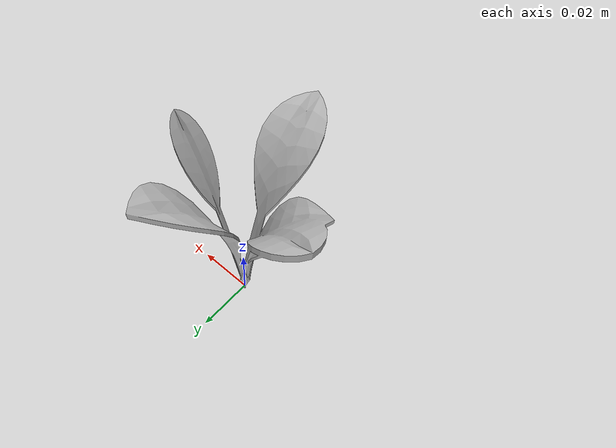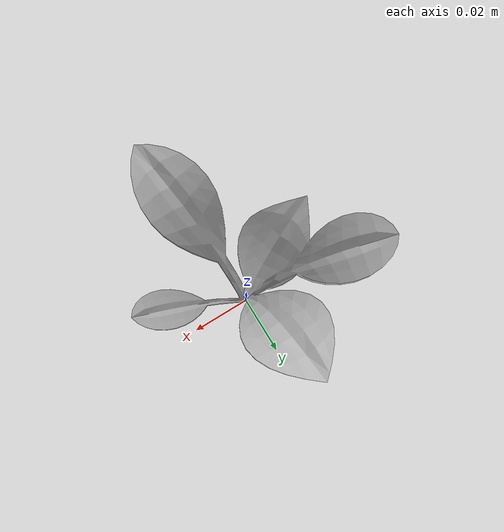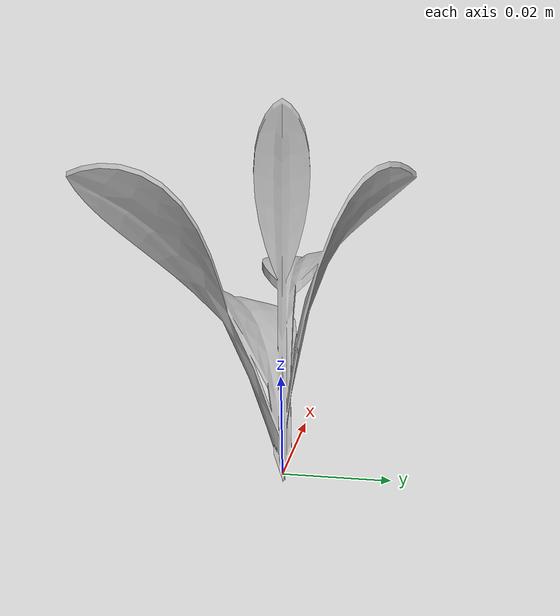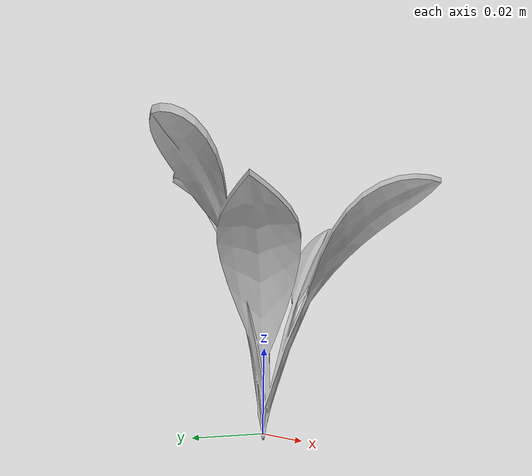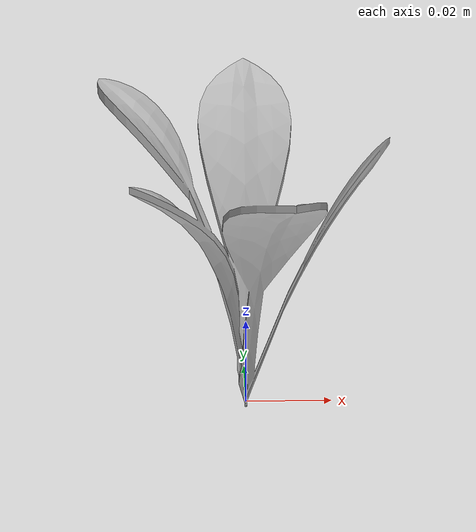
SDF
<sdf version="1.6">
  <model name="sugar_beet_20">
    <static>true</static>
    <link name="body">
      <visual name="visual">
        <geometry>
          <mesh>
            <uri>file:///sugar_beet_20/media/sugar_beet.dae</uri>
          </mesh>
        </geometry>
      </visual>
    </link>
  </model>
</sdf>
